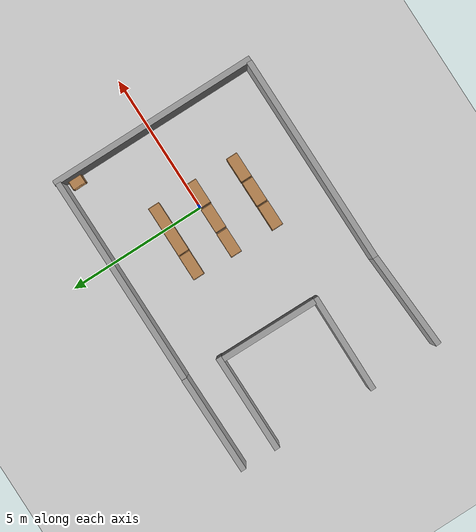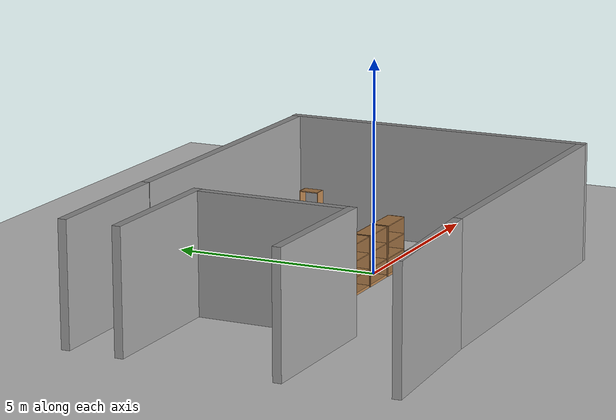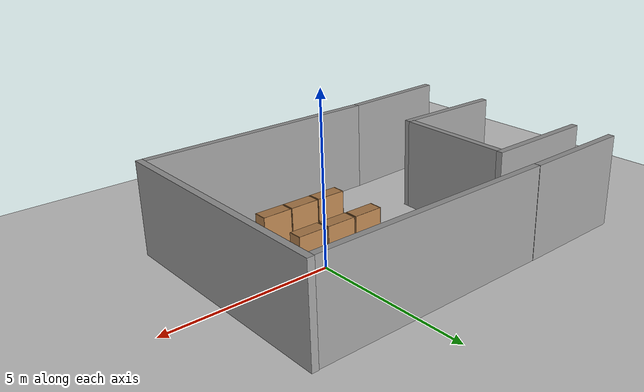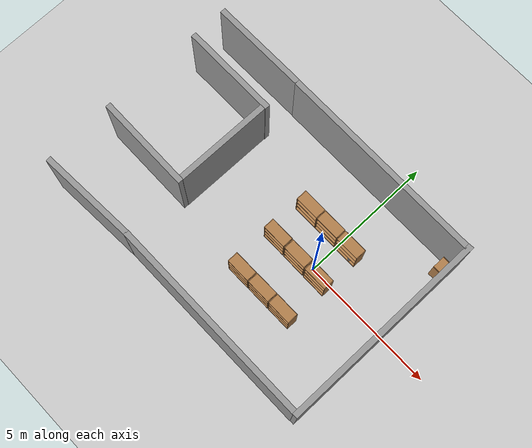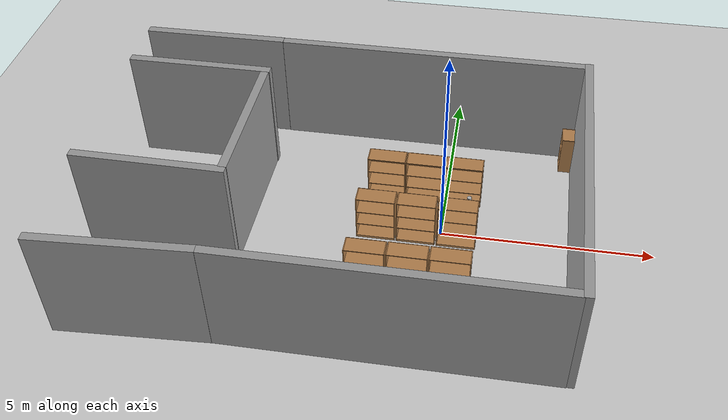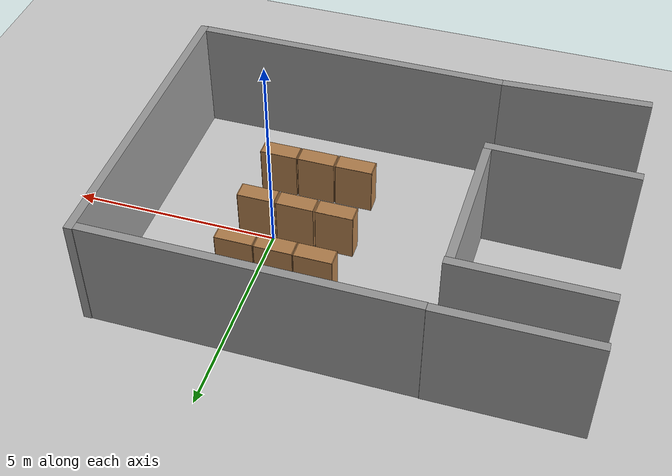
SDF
<sdf version="1.7">
 <world name="default">
  <light name="sun" type="directional">
   <pose>0 0 10 0 -0 0</pose>
   <diffuse>0.8 0.8 0.8 1</diffuse>
   <specular>0.2 0.2 0.2 1</specular>
   <attenuation>
    <range>1000</range>
    <constant>0.9</constant>
    <linear>0.01</linear>
    <quadratic>0.001</quadratic>
   </attenuation>
   <direction>-0.5 0.1 -0.9</direction>
   <spot><inner_angle>0</inner_angle><outer_angle>0</outer_angle><falloff>0</falloff></spot>
  </light>
  <model name="ground_plane">
   <static>1</static>
   <link name="link">
    <collision name="collision">
     <geometry><plane><normal>0 0 1</normal><size>100 100</size></plane></geometry>
     <surface><friction><ode><mu>100</mu><mu2>50</mu2></ode></friction></surface>
    </collision>
    <visual name="visual">
     <cast_shadows>0</cast_shadows>
     <geometry><plane><normal>0 0 1</normal><size>100 100</size></plane></geometry>
     <material>
      <script><uri>file://media/materials/scripts/gazebo.material</uri><name>Gazebo/Grey</name></script>
     </material>
    </visual>
   </link>
  </model>
  <gravity>0 0 -9.8</gravity>
  <magnetic_field>6e-06 2.3e-05 -4.2e-05</magnetic_field>
  <atmosphere type="adiabatic"/>
  <physics type="ode">
   <max_step_size>0.001</max_step_size>
   <real_time_factor>1</real_time_factor>
   <real_time_update_rate>1000</real_time_update_rate>
  </physics>
  <scene><ambient>0.4 0.4 0.4 1</ambient><background>0.7 0.7 0.7 1</background><shadows>1</shadows></scene>
  <audio><device>default</device></audio>
  <spherical_coordinates>
   <surface_model>EARTH_WGS84</surface_model>
   <latitude_deg>0</latitude_deg>
   <longitude_deg>0</longitude_deg>
   <elevation>0</elevation>
   <heading_deg>0</heading_deg>
  </spherical_coordinates>
  <model name="bookshelf">
   <static>1</static>
   <link name="link">
    <inertial><mass>1</mass></inertial>
    <collision name="back">
     <pose>0 0.005 0.6 0 -0 0</pose>
     <geometry><box><size>0.9 0.01 1.2</size></box></geometry>
    </collision>
    <visual name="visual1">
     <pose>0 0.005 0.6 0 -0 0</pose>
     <geometry><box><size>0.9 0.01 1.2</size></box></geometry>
     <material>
      <script><uri>file://media/materials/scripts/gazebo.material</uri><name>Gazebo/Wood</name></script>
     </material>
    </visual>
    <collision name="left_side">
     <pose>0.45 -0.195 0.6 0 -0 0</pose>
     <geometry><box><size>0.02 0.4 1.2</size></box></geometry>
    </collision>
    <visual name="visual2">
     <pose>0.45 -0.195 0.6 0 -0 0</pose>
     <geometry><box><size>0.02 0.4 1.2</size></box></geometry>
     <material>
      <script><uri>file://media/materials/scripts/gazebo.material</uri><name>Gazebo/Wood</name></script>
     </material>
    </visual>
    <collision name="right_side">
     <pose>-0.45 -0.195 0.6 0 -0 0</pose>
     <geometry><box><size>0.02 0.4 1.2</size></box></geometry>
    </collision>
    <visual name="visual3">
     <pose>-0.45 -0.195 0.6 0 -0 0</pose>
     <geometry><box><size>0.02 0.4 1.2</size></box></geometry>
     <material>
      <script><uri>file://media/materials/scripts/gazebo.material</uri><name>Gazebo/Wood</name></script>
     </material>
    </visual>
    <collision name="bottom">
     <pose>0 -0.195 0.03 0 -0 0</pose>
     <geometry><box><size>0.88 0.4 0.06</size></box></geometry>
    </collision>
    <visual name="visual4">
     <pose>0 -0.195 0.03 0 -0 0</pose>
     <geometry><box><size>0.88 0.4 0.06</size></box></geometry>
     <material>
      <script><uri>file://media/materials/scripts/gazebo.material</uri><name>Gazebo/Wood</name></script>
     </material>
    </visual>
    <collision name="top">
     <pose>0 -0.195 1.19 0 -0 0</pose>
     <geometry><box><size>0.88 0.4 0.02</size></box></geometry>
    </collision>
    <visual name="visual5">
     <pose>0 -0.195 1.19 0 -0 0</pose>
     <geometry><box><size>0.88 0.4 0.02</size></box></geometry>
     <material>
      <script><uri>file://media/materials/scripts/gazebo.material</uri><name>Gazebo/Wood</name></script>
     </material>
    </visual>
    <collision name="low_shelf">
     <pose>0 -0.195 0.43 0 -0 0</pose>
     <geometry><box><size>0.88 0.4 0.02</size></box></geometry>
    </collision>
    <visual name="visual6">
     <pose>0 -0.195 0.43 0 -0 0</pose>
     <geometry><box><size>0.88 0.4 0.02</size></box></geometry>
     <material>
      <script><uri>file://media/materials/scripts/gazebo.material</uri><name>Gazebo/Wood</name></script>
     </material>
    </visual>
    <collision name="high_shelf">
     <pose>0 -0.195 0.8 0 -0 0</pose>
     <geometry><box><size>0.88 0.4 0.02</size></box></geometry>
    </collision>
    <visual name="visual7">
     <pose>0 -0.195 0.8 0 -0 0</pose>
     <geometry><box><size>0.88 0.4 0.02</size></box></geometry>
     <material>
      <script><uri>file://media/materials/scripts/gazebo.material</uri><name>Gazebo/Wood</name></script>
     </material>
    </visual>
   </link>
   <pose>-1.46562 1.45935 0 0 -0 0</pose>
  </model>
  <model name="bookshelf_0">
   <static>1</static>
   <link name="link">
    <inertial><mass>1</mass></inertial>
    <collision name="back">
     <pose>0 0.005 0.6 0 -0 0</pose>
     <geometry><box><size>0.9 0.01 1.2</size></box></geometry>
    </collision>
    <visual name="visual1">
     <pose>0 0.005 0.6 0 -0 0</pose>
     <geometry><box><size>0.9 0.01 1.2</size></box></geometry>
     <material>
      <script><uri>file://media/materials/scripts/gazebo.material</uri><name>Gazebo/Wood</name></script>
     </material>
    </visual>
    <collision name="left_side">
     <pose>0.45 -0.195 0.6 0 -0 0</pose>
     <geometry><box><size>0.02 0.4 1.2</size></box></geometry>
    </collision>
    <visual name="visual2">
     <pose>0.45 -0.195 0.6 0 -0 0</pose>
     <geometry><box><size>0.02 0.4 1.2</size></box></geometry>
     <material>
      <script><uri>file://media/materials/scripts/gazebo.material</uri><name>Gazebo/Wood</name></script>
     </material>
    </visual>
    <collision name="right_side">
     <pose>-0.45 -0.195 0.6 0 -0 0</pose>
     <geometry><box><size>0.02 0.4 1.2</size></box></geometry>
    </collision>
    <visual name="visual3">
     <pose>-0.45 -0.195 0.6 0 -0 0</pose>
     <geometry><box><size>0.02 0.4 1.2</size></box></geometry>
     <material>
      <script><uri>file://media/materials/scripts/gazebo.material</uri><name>Gazebo/Wood</name></script>
     </material>
    </visual>
    <collision name="bottom">
     <pose>0 -0.195 0.03 0 -0 0</pose>
     <geometry><box><size>0.88 0.4 0.06</size></box></geometry>
    </collision>
    <visual name="visual4">
     <pose>0 -0.195 0.03 0 -0 0</pose>
     <geometry><box><size>0.88 0.4 0.06</size></box></geometry>
     <material>
      <script><uri>file://media/materials/scripts/gazebo.material</uri><name>Gazebo/Wood</name></script>
     </material>
    </visual>
    <collision name="top">
     <pose>0 -0.195 1.19 0 -0 0</pose>
     <geometry><box><size>0.88 0.4 0.02</size></box></geometry>
    </collision>
    <visual name="visual5">
     <pose>0 -0.195 1.19 0 -0 0</pose>
     <geometry><box><size>0.88 0.4 0.02</size></box></geometry>
     <material>
      <script><uri>file://media/materials/scripts/gazebo.material</uri><name>Gazebo/Wood</name></script>
     </material>
    </visual>
    <collision name="low_shelf">
     <pose>0 -0.195 0.43 0 -0 0</pose>
     <geometry><box><size>0.88 0.4 0.02</size></box></geometry>
    </collision>
    <visual name="visual6">
     <pose>0 -0.195 0.43 0 -0 0</pose>
     <geometry><box><size>0.88 0.4 0.02</size></box></geometry>
     <material>
      <script><uri>file://media/materials/scripts/gazebo.material</uri><name>Gazebo/Wood</name></script>
     </material>
    </visual>
    <collision name="high_shelf">
     <pose>0 -0.195 0.8 0 -0 0</pose>
     <geometry><box><size>0.88 0.4 0.02</size></box></geometry>
    </collision>
    <visual name="visual7">
     <pose>0 -0.195 0.8 0 -0 0</pose>
     <geometry><box><size>0.88 0.4 0.02</size></box></geometry>
     <material>
      <script><uri>file://media/materials/scripts/gazebo.material</uri><name>Gazebo/Wood</name></script>
     </material>
    </visual>
   </link>
   <pose>-0.53371 1.45436 0 0 -0 0</pose>
  </model>
  <model name="bookshelf_1">
   <static>1</static>
   <link name="link">
    <inertial><mass>1</mass></inertial>
    <collision name="back">
     <pose>0 0.005 0.6 0 -0 0</pose>
     <geometry><box><size>0.9 0.01 1.2</size></box></geometry>
    </collision>
    <visual name="visual1">
     <pose>0 0.005 0.6 0 -0 0</pose>
     <geometry><box><size>0.9 0.01 1.2</size></box></geometry>
     <material>
      <script><uri>file://media/materials/scripts/gazebo.material</uri><name>Gazebo/Wood</name></script>
     </material>
    </visual>
    <collision name="left_side">
     <pose>0.45 -0.195 0.6 0 -0 0</pose>
     <geometry><box><size>0.02 0.4 1.2</size></box></geometry>
    </collision>
    <visual name="visual2">
     <pose>0.45 -0.195 0.6 0 -0 0</pose>
     <geometry><box><size>0.02 0.4 1.2</size></box></geometry>
     <material>
      <script><uri>file://media/materials/scripts/gazebo.material</uri><name>Gazebo/Wood</name></script>
     </material>
    </visual>
    <collision name="right_side">
     <pose>-0.45 -0.195 0.6 0 -0 0</pose>
     <geometry><box><size>0.02 0.4 1.2</size></box></geometry>
    </collision>
    <visual name="visual3">
     <pose>-0.45 -0.195 0.6 0 -0 0</pose>
     <geometry><box><size>0.02 0.4 1.2</size></box></geometry>
     <material>
      <script><uri>file://media/materials/scripts/gazebo.material</uri><name>Gazebo/Wood</name></script>
     </material>
    </visual>
    <collision name="bottom">
     <pose>0 -0.195 0.03 0 -0 0</pose>
     <geometry><box><size>0.88 0.4 0.06</size></box></geometry>
    </collision>
    <visual name="visual4">
     <pose>0 -0.195 0.03 0 -0 0</pose>
     <geometry><box><size>0.88 0.4 0.06</size></box></geometry>
     <material>
      <script><uri>file://media/materials/scripts/gazebo.material</uri><name>Gazebo/Wood</name></script>
     </material>
    </visual>
    <collision name="top">
     <pose>0 -0.195 1.19 0 -0 0</pose>
     <geometry><box><size>0.88 0.4 0.02</size></box></geometry>
    </collision>
    <visual name="visual5">
     <pose>0 -0.195 1.19 0 -0 0</pose>
     <geometry><box><size>0.88 0.4 0.02</size></box></geometry>
     <material>
      <script><uri>file://media/materials/scripts/gazebo.material</uri><name>Gazebo/Wood</name></script>
     </material>
    </visual>
    <collision name="low_shelf">
     <pose>0 -0.195 0.43 0 -0 0</pose>
     <geometry><box><size>0.88 0.4 0.02</size></box></geometry>
    </collision>
    <visual name="visual6">
     <pose>0 -0.195 0.43 0 -0 0</pose>
     <geometry><box><size>0.88 0.4 0.02</size></box></geometry>
     <material>
      <script><uri>file://media/materials/scripts/gazebo.material</uri><name>Gazebo/Wood</name></script>
     </material>
    </visual>
    <collision name="high_shelf">
     <pose>0 -0.195 0.8 0 -0 0</pose>
     <geometry><box><size>0.88 0.4 0.02</size></box></geometry>
    </collision>
    <visual name="visual7">
     <pose>0 -0.195 0.8 0 -0 0</pose>
     <geometry><box><size>0.88 0.4 0.02</size></box></geometry>
     <material>
      <script><uri>file://media/materials/scripts/gazebo.material</uri><name>Gazebo/Wood</name></script>
     </material>
    </visual>
   </link>
   <pose>0.39976 1.44868 0 0 -0 0</pose>
  </model>
  <model name="beer">
   <link name="link">
    <pose>0 0 0.115 0 -0 0</pose>
    <inertial>
     <mass>0.39</mass>
     <inertia><ixx>0.00058</ixx><ixy>0</ixy><ixz>0</ixz><iyy>0.00058</iyy><iyz>0</iyz><izz>0.00019</izz></inertia>
    </inertial>
    <collision name="collision">
     <geometry><cylinder><radius>0.055</radius><length>0.23</length></cylinder></geometry>
    </collision>
    <visual name="visual">
     <geometry><cylinder><radius>0.055</radius><length>0.23</length></cylinder></geometry>
     <material>
      <script>
       <uri>model://beer/materials/scripts</uri>
       <uri>model://beer/materials/textures</uri>
       <name>Beer/Diffuse</name>
      </script>
     </material>
    </visual>
   </link>
   <pose>0.583658 1.12919 0 0 -0 0</pose>
  </model>
  <model name="bookshelf_2">
   <static>1</static>
   <link name="link">
    <inertial><mass>1</mass></inertial>
    <collision name="back">
     <pose>0 0.005 0.6 0 -0 0</pose>
     <geometry><box><size>0.9 0.01 1.2</size></box></geometry>
    </collision>
    <visual name="visual1">
     <pose>0 0.005 0.6 0 -0 0</pose>
     <geometry><box><size>0.9 0.01 1.2</size></box></geometry>
     <material>
      <script><uri>file://media/materials/scripts/gazebo.material</uri><name>Gazebo/Wood</name></script>
     </material>
    </visual>
    <collision name="left_side">
     <pose>0.45 -0.195 0.6 0 -0 0</pose>
     <geometry><box><size>0.02 0.4 1.2</size></box></geometry>
    </collision>
    <visual name="visual2">
     <pose>0.45 -0.195 0.6 0 -0 0</pose>
     <geometry><box><size>0.02 0.4 1.2</size></box></geometry>
     <material>
      <script><uri>file://media/materials/scripts/gazebo.material</uri><name>Gazebo/Wood</name></script>
     </material>
    </visual>
    <collision name="right_side">
     <pose>-0.45 -0.195 0.6 0 -0 0</pose>
     <geometry><box><size>0.02 0.4 1.2</size></box></geometry>
    </collision>
    <visual name="visual3">
     <pose>-0.45 -0.195 0.6 0 -0 0</pose>
     <geometry><box><size>0.02 0.4 1.2</size></box></geometry>
     <material>
      <script><uri>file://media/materials/scripts/gazebo.material</uri><name>Gazebo/Wood</name></script>
     </material>
    </visual>
    <collision name="bottom">
     <pose>0 -0.195 0.03 0 -0 0</pose>
     <geometry><box><size>0.88 0.4 0.06</size></box></geometry>
    </collision>
    <visual name="visual4">
     <pose>0 -0.195 0.03 0 -0 0</pose>
     <geometry><box><size>0.88 0.4 0.06</size></box></geometry>
     <material>
      <script><uri>file://media/materials/scripts/gazebo.material</uri><name>Gazebo/Wood</name></script>
     </material>
    </visual>
    <collision name="top">
     <pose>0 -0.195 1.19 0 -0 0</pose>
     <geometry><box><size>0.88 0.4 0.02</size></box></geometry>
    </collision>
    <visual name="visual5">
     <pose>0 -0.195 1.19 0 -0 0</pose>
     <geometry><box><size>0.88 0.4 0.02</size></box></geometry>
     <material>
      <script><uri>file://media/materials/scripts/gazebo.material</uri><name>Gazebo/Wood</name></script>
     </material>
    </visual>
    <collision name="low_shelf">
     <pose>0 -0.195 0.43 0 -0 0</pose>
     <geometry><box><size>0.88 0.4 0.02</size></box></geometry>
    </collision>
    <visual name="visual6">
     <pose>0 -0.195 0.43 0 -0 0</pose>
     <geometry><box><size>0.88 0.4 0.02</size></box></geometry>
     <material>
      <script><uri>file://media/materials/scripts/gazebo.material</uri><name>Gazebo/Wood</name></script>
     </material>
    </visual>
    <collision name="high_shelf">
     <pose>0 -0.195 0.8 0 -0 0</pose>
     <geometry><box><size>0.88 0.4 0.02</size></box></geometry>
    </collision>
    <visual name="visual7">
     <pose>0 -0.195 0.8 0 -0 0</pose>
     <geometry><box><size>0.88 0.4 0.02</size></box></geometry>
     <material>
      <script><uri>file://media/materials/scripts/gazebo.material</uri><name>Gazebo/Wood</name></script>
     </material>
    </visual>
   </link>
   <pose>-1.51005 0.018779 0 0 -0 0</pose>
  </model>
  <model name="bookshelf_3">
   <static>1</static>
   <link name="link">
    <inertial><mass>1</mass></inertial>
    <collision name="back">
     <pose>0 0.005 0.6 0 -0 0</pose>
     <geometry><box><size>0.9 0.01 1.2</size></box></geometry>
    </collision>
    <visual name="visual1">
     <pose>0 0.005 0.6 0 -0 0</pose>
     <geometry><box><size>0.9 0.01 1.2</size></box></geometry>
     <material>
      <script><uri>file://media/materials/scripts/gazebo.material</uri><name>Gazebo/Wood</name></script>
     </material>
    </visual>
    <collision name="left_side">
     <pose>0.45 -0.195 0.6 0 -0 0</pose>
     <geometry><box><size>0.02 0.4 1.2</size></box></geometry>
    </collision>
    <visual name="visual2">
     <pose>0.45 -0.195 0.6 0 -0 0</pose>
     <geometry><box><size>0.02 0.4 1.2</size></box></geometry>
     <material>
      <script><uri>file://media/materials/scripts/gazebo.material</uri><name>Gazebo/Wood</name></script>
     </material>
    </visual>
    <collision name="right_side">
     <pose>-0.45 -0.195 0.6 0 -0 0</pose>
     <geometry><box><size>0.02 0.4 1.2</size></box></geometry>
    </collision>
    <visual name="visual3">
     <pose>-0.45 -0.195 0.6 0 -0 0</pose>
     <geometry><box><size>0.02 0.4 1.2</size></box></geometry>
     <material>
      <script><uri>file://media/materials/scripts/gazebo.material</uri><name>Gazebo/Wood</name></script>
     </material>
    </visual>
    <collision name="bottom">
     <pose>0 -0.195 0.03 0 -0 0</pose>
     <geometry><box><size>0.88 0.4 0.06</size></box></geometry>
    </collision>
    <visual name="visual4">
     <pose>0 -0.195 0.03 0 -0 0</pose>
     <geometry><box><size>0.88 0.4 0.06</size></box></geometry>
     <material>
      <script><uri>file://media/materials/scripts/gazebo.material</uri><name>Gazebo/Wood</name></script>
     </material>
    </visual>
    <collision name="top">
     <pose>0 -0.195 1.19 0 -0 0</pose>
     <geometry><box><size>0.88 0.4 0.02</size></box></geometry>
    </collision>
    <visual name="visual5">
     <pose>0 -0.195 1.19 0 -0 0</pose>
     <geometry><box><size>0.88 0.4 0.02</size></box></geometry>
     <material>
      <script><uri>file://media/materials/scripts/gazebo.material</uri><name>Gazebo/Wood</name></script>
     </material>
    </visual>
    <collision name="low_shelf">
     <pose>0 -0.195 0.43 0 -0 0</pose>
     <geometry><box><size>0.88 0.4 0.02</size></box></geometry>
    </collision>
    <visual name="visual6">
     <pose>0 -0.195 0.43 0 -0 0</pose>
     <geometry><box><size>0.88 0.4 0.02</size></box></geometry>
     <material>
      <script><uri>file://media/materials/scripts/gazebo.material</uri><name>Gazebo/Wood</name></script>
     </material>
    </visual>
    <collision name="high_shelf">
     <pose>0 -0.195 0.8 0 -0 0</pose>
     <geometry><box><size>0.88 0.4 0.02</size></box></geometry>
    </collision>
    <visual name="visual7">
     <pose>0 -0.195 0.8 0 -0 0</pose>
     <geometry><box><size>0.88 0.4 0.02</size></box></geometry>
     <material>
      <script><uri>file://media/materials/scripts/gazebo.material</uri><name>Gazebo/Wood</name></script>
     </material>
    </visual>
   </link>
   <pose>-0.559161 0.013309 0 0 -0 0</pose>
  </model>
  <model name="bookshelf_4">
   <static>1</static>
   <link name="link">
    <inertial><mass>1</mass></inertial>
    <collision name="back">
     <pose>0 0.005 0.6 0 -0 0</pose>
     <geometry><box><size>0.9 0.01 1.2</size></box></geometry>
    </collision>
    <visual name="visual1">
     <pose>0 0.005 0.6 0 -0 0</pose>
     <geometry><box><size>0.9 0.01 1.2</size></box></geometry>
     <material>
      <script><uri>file://media/materials/scripts/gazebo.material</uri><name>Gazebo/Wood</name></script>
     </material>
    </visual>
    <collision name="left_side">
     <pose>0.45 -0.195 0.6 0 -0 0</pose>
     <geometry><box><size>0.02 0.4 1.2</size></box></geometry>
    </collision>
    <visual name="visual2">
     <pose>0.45 -0.195 0.6 0 -0 0</pose>
     <geometry><box><size>0.02 0.4 1.2</size></box></geometry>
     <material>
      <script><uri>file://media/materials/scripts/gazebo.material</uri><name>Gazebo/Wood</name></script>
     </material>
    </visual>
    <collision name="right_side">
     <pose>-0.45 -0.195 0.6 0 -0 0</pose>
     <geometry><box><size>0.02 0.4 1.2</size></box></geometry>
    </collision>
    <visual name="visual3">
     <pose>-0.45 -0.195 0.6 0 -0 0</pose>
     <geometry><box><size>0.02 0.4 1.2</size></box></geometry>
     <material>
      <script><uri>file://media/materials/scripts/gazebo.material</uri><name>Gazebo/Wood</name></script>
     </material>
    </visual>
    <collision name="bottom">
     <pose>0 -0.195 0.03 0 -0 0</pose>
     <geometry><box><size>0.88 0.4 0.06</size></box></geometry>
    </collision>
    <visual name="visual4">
     <pose>0 -0.195 0.03 0 -0 0</pose>
     <geometry><box><size>0.88 0.4 0.06</size></box></geometry>
     <material>
      <script><uri>file://media/materials/scripts/gazebo.material</uri><name>Gazebo/Wood</name></script>
     </material>
    </visual>
    <collision name="top">
     <pose>0 -0.195 1.19 0 -0 0</pose>
     <geometry><box><size>0.88 0.4 0.02</size></box></geometry>
    </collision>
    <visual name="visual5">
     <pose>0 -0.195 1.19 0 -0 0</pose>
     <geometry><box><size>0.88 0.4 0.02</size></box></geometry>
     <material>
      <script><uri>file://media/materials/scripts/gazebo.material</uri><name>Gazebo/Wood</name></script>
     </material>
    </visual>
    <collision name="low_shelf">
     <pose>0 -0.195 0.43 0 -0 0</pose>
     <geometry><box><size>0.88 0.4 0.02</size></box></geometry>
    </collision>
    <visual name="visual6">
     <pose>0 -0.195 0.43 0 -0 0</pose>
     <geometry><box><size>0.88 0.4 0.02</size></box></geometry>
     <material>
      <script><uri>file://media/materials/scripts/gazebo.material</uri><name>Gazebo/Wood</name></script>
     </material>
    </visual>
    <collision name="high_shelf">
     <pose>0 -0.195 0.8 0 -0 0</pose>
     <geometry><box><size>0.88 0.4 0.02</size></box></geometry>
    </collision>
    <visual name="visual7">
     <pose>0 -0.195 0.8 0 -0 0</pose>
     <geometry><box><size>0.88 0.4 0.02</size></box></geometry>
     <material>
      <script><uri>file://media/materials/scripts/gazebo.material</uri><name>Gazebo/Wood</name></script>
     </material>
    </visual>
   </link>
   <pose>0.39396 0.003178 0 0 -0 0</pose>
  </model>
  <model name="cabinet">
   <static>1</static>
   <link name="cabinet_bottom_plate">
    <inertial>
     <pose>0 0 -1 0 -0 0</pose>
     <inertia><ixx>2.05</ixx><ixy>0</ixy><ixz>0</ixz><iyy>2.05</iyy><iyz>0</iyz><izz>2.05</izz></inertia>
     <mass>25</mass>
    </inertial>
    <collision name="cabinet_bottom_plate_geom">
     <pose>0 0 0.01 0 -0 0</pose>
     <geometry><box><size>0.45 0.45 0.02</size></box></geometry>
    </collision>
    <visual name="cabinet_bottom_plate_geom_visual">
     <pose>0 0 0.01 0 -0 0</pose>
     <geometry><box><size>0.45 0.45 0.02</size></box></geometry>
     <material>
      <script><uri>file://media/materials/scripts/gazebo.material</uri><name>Gazebo/Wood</name></script>
     </material>
    </visual>
    <collision name="cabinet_bottom_plate_geom_cabinet_back_plate">
     <pose>0.235 0 0.51 0 -0 0</pose>
     <geometry><box><size>0.02 0.45 1.02</size></box></geometry>
    </collision>
    <visual name="cabinet_bottom_plate_geom_cabinet_back_plate_visual">
     <pose>0.235 0 0.51 0 -0 0</pose>
     <geometry><box><size>0.02 0.45 1.02</size></box></geometry>
     <material>
      <script><uri>file://media/materials/scripts/gazebo.material</uri><name>Gazebo/Wood</name></script>
     </material>
    </visual>
    <collision name="cabinet_bottom_plate_geom_cabinet_left_plate">
     <pose>0 0.235 0.51 0 -0 0</pose>
     <geometry><box><size>0.45 0.02 1.02</size></box></geometry>
    </collision>
    <visual name="cabinet_bottom_plate_geom_cabinet_left_plate_visual">
     <pose>0 0.235 0.51 0 -0 0</pose>
     <geometry><box><size>0.45 0.02 1.02</size></box></geometry>
     <material>
      <script><uri>file://media/materials/scripts/gazebo.material</uri><name>Gazebo/Wood</name></script>
     </material>
    </visual>
    <collision name="cabinet_bottom_plate_geom_cabinet_middle_plate">
     <pose>0 0 0.51 0 -0 0</pose>
     <geometry><box><size>0.45 0.45 0.02</size></box></geometry>
    </collision>
    <visual name="cabinet_bottom_plate_geom_cabinet_middle_plate_visual">
     <pose>0 0 0.51 0 -0 0</pose>
     <geometry><box><size>0.45 0.45 0.02</size></box></geometry>
     <material>
      <script><uri>file://media/materials/scripts/gazebo.material</uri><name>Gazebo/Wood</name></script>
     </material>
    </visual>
    <collision name="cabinet_bottom_plate_geom_cabinet_right_plate">
     <pose>0 -0.235 0.51 0 -0 0</pose>
     <geometry><box><size>0.45 0.02 1.02</size></box></geometry>
    </collision>
    <visual name="cabinet_bottom_plate_geom_cabinet_right_plate_visual">
     <pose>0 -0.235 0.51 0 -0 0</pose>
     <geometry><box><size>0.45 0.02 1.02</size></box></geometry>
     <material>
      <script><uri>file://media/materials/scripts/gazebo.material</uri><name>Gazebo/Wood</name></script>
     </material>
    </visual>
    <collision name="cabinet_bottom_plate_geom_cabinet_top_plate">
     <pose>0 0 1.01 0 -0 0</pose>
     <geometry><box><size>0.45 0.45 0.02</size></box></geometry>
    </collision>
    <visual name="cabinet_bottom_plate_geom_cabinet_top_plate_visual">
     <pose>0 0 1.01 0 -0 0</pose>
     <geometry><box><size>0.45 0.45 0.02</size></box></geometry>
     <material>
      <script><uri>file://media/materials/scripts/gazebo.material</uri><name>Gazebo/Wood</name></script>
     </material>
    </visual>
   </link>
   <pose>2.94621 2.95224 -0 0 -0 0</pose>
  </model>
  <model name="bookshelf_5">
   <model name="bookshelf">
    <static>1</static>
    <link name="link">
     <inertial><mass>1</mass></inertial>
     <collision name="back">
      <pose>0 0.005 0.6 0 -0 0</pose>
      <geometry><box><size>0.9 0.01 1.2</size></box></geometry>
     </collision>
     <visual name="visual1">
      <pose>0 0.005 0.6 0 -0 0</pose>
      <geometry><box><size>0.9 0.01 1.2</size></box></geometry>
      <material>
       <script><uri>file://media/materials/scripts/gazebo.material</uri><name>Gazebo/Wood</name></script>
      </material>
     </visual>
     <collision name="left_side">
      <pose>0.45 -0.195 0.6 0 -0 0</pose>
      <geometry><box><size>0.02 0.4 1.2</size></box></geometry>
     </collision>
     <visual name="visual2">
      <pose>0.45 -0.195 0.6 0 -0 0</pose>
      <geometry><box><size>0.02 0.4 1.2</size></box></geometry>
      <material>
       <script><uri>file://media/materials/scripts/gazebo.material</uri><name>Gazebo/Wood</name></script>
      </material>
     </visual>
     <collision name="right_side">
      <pose>-0.45 -0.195 0.6 0 -0 0</pose>
      <geometry><box><size>0.02 0.4 1.2</size></box></geometry>
     </collision>
     <visual name="visual3">
      <pose>-0.45 -0.195 0.6 0 -0 0</pose>
      <geometry><box><size>0.02 0.4 1.2</size></box></geometry>
      <material>
       <script><uri>file://media/materials/scripts/gazebo.material</uri><name>Gazebo/Wood</name></script>
      </material>
     </visual>
     <collision name="bottom">
      <pose>0 -0.195 0.03 0 -0 0</pose>
      <geometry><box><size>0.88 0.4 0.06</size></box></geometry>
     </collision>
     <visual name="visual4">
      <pose>0 -0.195 0.03 0 -0 0</pose>
      <geometry><box><size>0.88 0.4 0.06</size></box></geometry>
      <material>
       <script><uri>file://media/materials/scripts/gazebo.material</uri><name>Gazebo/Wood</name></script>
      </material>
     </visual>
     <collision name="top">
      <pose>0 -0.195 1.19 0 -0 0</pose>
      <geometry><box><size>0.88 0.4 0.02</size></box></geometry>
     </collision>
     <visual name="visual5">
      <pose>0 -0.195 1.19 0 -0 0</pose>
      <geometry><box><size>0.88 0.4 0.02</size></box></geometry>
      <material>
       <script><uri>file://media/materials/scripts/gazebo.material</uri><name>Gazebo/Wood</name></script>
      </material>
     </visual>
     <collision name="low_shelf">
      <pose>0 -0.195 0.43 0 -0 0</pose>
      <geometry><box><size>0.88 0.4 0.02</size></box></geometry>
     </collision>
     <visual name="visual6">
      <pose>0 -0.195 0.43 0 -0 0</pose>
      <geometry><box><size>0.88 0.4 0.02</size></box></geometry>
      <material>
       <script><uri>file://media/materials/scripts/gazebo.material</uri><name>Gazebo/Wood</name></script>
      </material>
     </visual>
     <collision name="high_shelf">
      <pose>0 -0.195 0.8 0 -0 0</pose>
      <geometry><box><size>0.88 0.4 0.02</size></box></geometry>
     </collision>
     <visual name="visual7">
      <pose>0 -0.195 0.8 0 -0 0</pose>
      <geometry><box><size>0.88 0.4 0.02</size></box></geometry>
      <material>
       <script><uri>file://media/materials/scripts/gazebo.material</uri><name>Gazebo/Wood</name></script>
      </material>
     </visual>
    </link>
    <pose>0.036511 -0.595835 0 0 -0 0</pose>
   </model>
   <static>1</static>
   <pose>-1.5343 -1.0042 0 0 -0 0</pose>
  </model>
  <model name="bookshelf_6">
   <static>1</static>
   <link name="link">
    <inertial><mass>1</mass></inertial>
    <collision name="back">
     <pose>0 0.005 0.6 0 -0 0</pose>
     <geometry><box><size>0.9 0.01 1.2</size></box></geometry>
    </collision>
    <visual name="visual1">
     <pose>0 0.005 0.6 0 -0 0</pose>
     <geometry><box><size>0.9 0.01 1.2</size></box></geometry>
     <material>
      <script><uri>file://media/materials/scripts/gazebo.material</uri><name>Gazebo/Wood</name></script>
     </material>
    </visual>
    <collision name="left_side">
     <pose>0.45 -0.195 0.6 0 -0 0</pose>
     <geometry><box><size>0.02 0.4 1.2</size></box></geometry>
    </collision>
    <visual name="visual2">
     <pose>0.45 -0.195 0.6 0 -0 0</pose>
     <geometry><box><size>0.02 0.4 1.2</size></box></geometry>
     <material>
      <script><uri>file://media/materials/scripts/gazebo.material</uri><name>Gazebo/Wood</name></script>
     </material>
    </visual>
    <collision name="right_side">
     <pose>-0.45 -0.195 0.6 0 -0 0</pose>
     <geometry><box><size>0.02 0.4 1.2</size></box></geometry>
    </collision>
    <visual name="visual3">
     <pose>-0.45 -0.195 0.6 0 -0 0</pose>
     <geometry><box><size>0.02 0.4 1.2</size></box></geometry>
     <material>
      <script><uri>file://media/materials/scripts/gazebo.material</uri><name>Gazebo/Wood</name></script>
     </material>
    </visual>
    <collision name="bottom">
     <pose>0 -0.195 0.03 0 -0 0</pose>
     <geometry><box><size>0.88 0.4 0.06</size></box></geometry>
    </collision>
    <visual name="visual4">
     <pose>0 -0.195 0.03 0 -0 0</pose>
     <geometry><box><size>0.88 0.4 0.06</size></box></geometry>
     <material>
      <script><uri>file://media/materials/scripts/gazebo.material</uri><name>Gazebo/Wood</name></script>
     </material>
    </visual>
    <collision name="top">
     <pose>0 -0.195 1.19 0 -0 0</pose>
     <geometry><box><size>0.88 0.4 0.02</size></box></geometry>
    </collision>
    <visual name="visual5">
     <pose>0 -0.195 1.19 0 -0 0</pose>
     <geometry><box><size>0.88 0.4 0.02</size></box></geometry>
     <material>
      <script><uri>file://media/materials/scripts/gazebo.material</uri><name>Gazebo/Wood</name></script>
     </material>
    </visual>
    <collision name="low_shelf">
     <pose>0 -0.195 0.43 0 -0 0</pose>
     <geometry><box><size>0.88 0.4 0.02</size></box></geometry>
    </collision>
    <visual name="visual6">
     <pose>0 -0.195 0.43 0 -0 0</pose>
     <geometry><box><size>0.88 0.4 0.02</size></box></geometry>
     <material>
      <script><uri>file://media/materials/scripts/gazebo.material</uri><name>Gazebo/Wood</name></script>
     </material>
    </visual>
    <collision name="high_shelf">
     <pose>0 -0.195 0.8 0 -0 0</pose>
     <geometry><box><size>0.88 0.4 0.02</size></box></geometry>
    </collision>
    <visual name="visual7">
     <pose>0 -0.195 0.8 0 -0 0</pose>
     <geometry><box><size>0.88 0.4 0.02</size></box></geometry>
     <material>
      <script><uri>file://media/materials/scripts/gazebo.material</uri><name>Gazebo/Wood</name></script>
     </material>
    </visual>
   </link>
   <pose>-0.555699 -1.59465 0 0 -0 0</pose>
  </model>
  <model name="bookshelf_7">
   <static>1</static>
   <link name="link">
    <inertial><mass>1</mass></inertial>
    <collision name="back">
     <pose>0 0.005 0.6 0 -0 0</pose>
     <geometry><box><size>0.9 0.01 1.2</size></box></geometry>
    </collision>
    <visual name="visual1">
     <pose>0 0.005 0.6 0 -0 0</pose>
     <geometry><box><size>0.9 0.01 1.2</size></box></geometry>
     <material>
      <script><uri>file://media/materials/scripts/gazebo.material</uri><name>Gazebo/Wood</name></script>
     </material>
    </visual>
    <collision name="left_side">
     <pose>0.45 -0.195 0.6 0 -0 0</pose>
     <geometry><box><size>0.02 0.4 1.2</size></box></geometry>
    </collision>
    <visual name="visual2">
     <pose>0.45 -0.195 0.6 0 -0 0</pose>
     <geometry><box><size>0.02 0.4 1.2</size></box></geometry>
     <material>
      <script><uri>file://media/materials/scripts/gazebo.material</uri><name>Gazebo/Wood</name></script>
     </material>
    </visual>
    <collision name="right_side">
     <pose>-0.45 -0.195 0.6 0 -0 0</pose>
     <geometry><box><size>0.02 0.4 1.2</size></box></geometry>
    </collision>
    <visual name="visual3">
     <pose>-0.45 -0.195 0.6 0 -0 0</pose>
     <geometry><box><size>0.02 0.4 1.2</size></box></geometry>
     <material>
      <script><uri>file://media/materials/scripts/gazebo.material</uri><name>Gazebo/Wood</name></script>
     </material>
    </visual>
    <collision name="bottom">
     <pose>0 -0.195 0.03 0 -0 0</pose>
     <geometry><box><size>0.88 0.4 0.06</size></box></geometry>
    </collision>
    <visual name="visual4">
     <pose>0 -0.195 0.03 0 -0 0</pose>
     <geometry><box><size>0.88 0.4 0.06</size></box></geometry>
     <material>
      <script><uri>file://media/materials/scripts/gazebo.material</uri><name>Gazebo/Wood</name></script>
     </material>
    </visual>
    <collision name="top">
     <pose>0 -0.195 1.19 0 -0 0</pose>
     <geometry><box><size>0.88 0.4 0.02</size></box></geometry>
    </collision>
    <visual name="visual5">
     <pose>0 -0.195 1.19 0 -0 0</pose>
     <geometry><box><size>0.88 0.4 0.02</size></box></geometry>
     <material>
      <script><uri>file://media/materials/scripts/gazebo.material</uri><name>Gazebo/Wood</name></script>
     </material>
    </visual>
    <collision name="low_shelf">
     <pose>0 -0.195 0.43 0 -0 0</pose>
     <geometry><box><size>0.88 0.4 0.02</size></box></geometry>
    </collision>
    <visual name="visual6">
     <pose>0 -0.195 0.43 0 -0 0</pose>
     <geometry><box><size>0.88 0.4 0.02</size></box></geometry>
     <material>
      <script><uri>file://media/materials/scripts/gazebo.material</uri><name>Gazebo/Wood</name></script>
     </material>
    </visual>
    <collision name="high_shelf">
     <pose>0 -0.195 0.8 0 -0 0</pose>
     <geometry><box><size>0.88 0.4 0.02</size></box></geometry>
    </collision>
    <visual name="visual7">
     <pose>0 -0.195 0.8 0 -0 0</pose>
     <geometry><box><size>0.88 0.4 0.02</size></box></geometry>
     <material>
      <script><uri>file://media/materials/scripts/gazebo.material</uri><name>Gazebo/Wood</name></script>
     </material>
    </visual>
   </link>
   <pose>0.385078 -1.59312 0 0 -0 0</pose>
  </model>
  <model name="grey_wall_0">
   <static>1</static>
   <link name="link">
    <pose>0 0 1.4 0 -0 0</pose>
    <collision name="collision"><geometry><box><size>7.5 0.2 2.8</size></box></geometry></collision>
    <visual name="visual">
     <cast_shadows>0</cast_shadows>
     <geometry><box><size>7.5 0.2 2.8</size></box></geometry>
     <material>
      <script>
       <uri>model://grey_wall/materials/scripts</uri>
       <uri>model://grey_wall/materials/textures</uri>
       <name>vrc/grey_wall</name>
      </script>
     </material>
    </visual>
   </link>
   <pose>-0.726197 -3.87965 0 0 -0 0</pose>
  </model>
  <model name="grey_wall">
   <static>1</static>
   <link name="link">
    <pose>0 0 1.4 0 -0 0</pose>
    <collision name="collision"><geometry><box><size>7.5 0.2 2.8</size></box></geometry></collision>
    <visual name="visual">
     <cast_shadows>0</cast_shadows>
     <geometry><box><size>7.5 0.2 2.8</size></box></geometry>
     <material>
      <script>
       <uri>model://grey_wall/materials/scripts</uri>
       <uri>model://grey_wall/materials/textures</uri>
       <name>vrc/grey_wall</name>
      </script>
     </material>
    </visual>
   </link>
   <pose>-0.684541 3.41504 0 0 -0 0</pose>
  </model>
  <model name="grey_wall_1">
   <static>1</static>
   <link name="link">
    <pose>0 0 1.4 0 -0 0</pose>
    <collision name="collision"><geometry><box><size>7.5 0.2 2.8</size></box></geometry></collision>
    <visual name="visual">
     <cast_shadows>0</cast_shadows>
     <geometry><box><size>7.5 0.2 2.8</size></box></geometry>
     <material>
      <script>
       <uri>model://grey_wall/materials/scripts</uri>
       <uri>model://grey_wall/materials/textures</uri>
       <name>vrc/grey_wall</name>
      </script>
     </material>
    </visual>
   </link>
   <pose>3.10648 -0.218077 0 -2e-05 -0 -1.57551</pose>
  </model>
  <model name="grey_wall_2">
   <link name="link">
    <pose>-1.79506 -0.196384 1.4 0 -0 0</pose>
    <inertial>
     <mass>1</mass>
     <inertia><ixx>1</ixx><ixy>0</ixy><ixz>0</ixz><iyy>1</iyy><iyz>0</iyz><izz>1</izz></inertia>
    </inertial>
    <visual name="visual">
     <cast_shadows>0</cast_shadows>
     <geometry><box><size>3.5 0.2 2.8</size></box></geometry>
     <material>
      <script>
       <uri>model://grey_wall/materials/scripts</uri>
       <uri>model://grey_wall/materials/textures</uri>
       <name>vrc/grey_wall</name>
      </script>
      <shader type="pixel"><normal_map>__default__</normal_map></shader>
      <ambient>1 1 1 1</ambient>
      <diffuse>1 1 1 1</diffuse>
      <specular>0 0 0 1</specular>
      <emissive>0 0 0 1</emissive>
     </material>
    </visual>
    <collision name="collision">
     <geometry><box><size>7.5 0.2 2.8</size></box></geometry>
     <surface>
      <friction>
       <ode><mu>1</mu><mu2>1</mu2><fdir1>0 0 0</fdir1><slip1>0</slip1><slip2>0</slip2></ode>
       <torsional>
        <coefficient>1</coefficient>
        <patch_radius>0</patch_radius>
        <surface_radius>0</surface_radius>
        <use_patch_radius>1</use_patch_radius>
        <ode><slip>0</slip></ode>
       </torsional>
      </friction>
      <bounce><restitution_coefficient>0</restitution_coefficient><threshold>1e+06</threshold></bounce>
      <contact>
       <collide_without_contact>0</collide_without_contact>
       <collide_without_contact_bitmask>1</collide_without_contact_bitmask>
       <collide_bitmask>1</collide_bitmask>
       <ode>
        <soft_cfm>0</soft_cfm>
        <soft_erp>0.2</soft_erp>
        <kp>1e+13</kp>
        <kd>1</kd>
        <max_vel>0.01</max_vel>
        <min_depth>0</min_depth>
       </ode>
       <bullet>
        <split_impulse>1</split_impulse>
        <split_impulse_penetration_threshold>-0.01</split_impulse_penetration_threshold>
        <soft_cfm>0</soft_cfm>
        <soft_erp>0.2</soft_erp>
        <kp>1e+13</kp>
        <kd>1</kd>
       </bullet>
      </contact>
     </surface>
    </collision>
   </link>
   <link name="link_clone">
    <pose>-3.62522 -1.82976 1.4 0 -0 1.58206</pose>
    <inertial>
     <mass>1</mass>
     <inertia><ixx>1</ixx><ixy>0</ixy><ixz>0</ixz><iyy>1</iyy><iyz>0</iyz><izz>1</izz></inertia>
    </inertial>
    <visual name="visual">
     <cast_shadows>0</cast_shadows>
     <geometry><box><size>3.5 0.2 2.8</size></box></geometry>
     <material>
      <script>
       <uri>model://grey_wall/materials/scripts</uri>
       <uri>model://grey_wall/materials/textures</uri>
       <name>vrc/grey_wall</name>
      </script>
      <shader type="pixel"><normal_map>__default__</normal_map></shader>
      <ambient>1 1 1 1</ambient>
      <diffuse>1 1 1 1</diffuse>
      <specular>0 0 0 1</specular>
      <emissive>0 0 0 1</emissive>
     </material>
    </visual>
    <collision name="collision">
     <geometry><box><size>7.5 0.2 2.8</size></box></geometry>
     <surface>
      <friction>
       <ode><mu>1</mu><mu2>1</mu2><fdir1>0 0 0</fdir1><slip1>0</slip1><slip2>0</slip2></ode>
       <torsional>
        <coefficient>1</coefficient>
        <patch_radius>0</patch_radius>
        <surface_radius>0</surface_radius>
        <use_patch_radius>1</use_patch_radius>
        <ode><slip>0</slip></ode>
       </torsional>
      </friction>
      <bounce><restitution_coefficient>0</restitution_coefficient><threshold>1e+06</threshold></bounce>
      <contact>
       <collide_without_contact>0</collide_without_contact>
       <collide_without_contact_bitmask>1</collide_without_contact_bitmask>
       <collide_bitmask>1</collide_bitmask>
       <ode>
        <soft_cfm>0</soft_cfm>
        <soft_erp>0.2</soft_erp>
        <kp>1e+13</kp>
        <kd>1</kd>
        <max_vel>0.01</max_vel>
        <min_depth>0</min_depth>
       </ode>
       <bullet>
        <split_impulse>1</split_impulse>
        <split_impulse_penetration_threshold>-0.01</split_impulse_penetration_threshold>
        <soft_cfm>0</soft_cfm>
        <soft_erp>0.2</soft_erp>
        <kp>1e+13</kp>
        <kd>1</kd>
       </bullet>
      </contact>
     </surface>
    </collision>
   </link>
   <link name="link_clone_clone">
    <pose>0.028932 -1.85478 1.4 0 -0 1.57232</pose>
    <inertial>
     <mass>1</mass>
     <inertia><ixx>1</ixx><ixy>0</ixy><ixz>0</ixz><iyy>1</iyy><iyz>0</iyz><izz>1</izz></inertia>
    </inertial>
    <visual name="visual">
     <cast_shadows>0</cast_shadows>
     <geometry><box><size>3.5 0.2 2.8</size></box></geometry>
     <material>
      <script>
       <uri>model://grey_wall/materials/scripts</uri>
       <uri>model://grey_wall/materials/textures</uri>
       <name>vrc/grey_wall</name>
      </script>
      <shader type="pixel"><normal_map>__default__</normal_map></shader>
      <ambient>1 1 1 1</ambient>
      <diffuse>1 1 1 1</diffuse>
      <specular>0 0 0 1</specular>
      <emissive>0 0 0 1</emissive>
     </material>
    </visual>
    <collision name="collision">
     <geometry><box><size>7.5 0.2 2.8</size></box></geometry>
     <surface>
      <friction>
       <ode><mu>1</mu><mu2>1</mu2><fdir1>0 0 0</fdir1><slip1>0</slip1><slip2>0</slip2></ode>
       <torsional>
        <coefficient>1</coefficient>
        <patch_radius>0</patch_radius>
        <surface_radius>0</surface_radius>
        <use_patch_radius>1</use_patch_radius>
        <ode><slip>0</slip></ode>
       </torsional>
      </friction>
      <bounce><restitution_coefficient>0</restitution_coefficient><threshold>1e+06</threshold></bounce>
      <contact>
       <collide_without_contact>0</collide_without_contact>
       <collide_without_contact_bitmask>1</collide_without_contact_bitmask>
       <collide_bitmask>1</collide_bitmask>
       <ode>
        <soft_cfm>0</soft_cfm>
        <soft_erp>0.2</soft_erp>
        <kp>1e+13</kp>
        <kd>1</kd>
        <max_vel>0.01</max_vel>
        <min_depth>0</min_depth>
       </ode>
       <bullet>
        <split_impulse>1</split_impulse>
        <split_impulse_penetration_threshold>-0.01</split_impulse_penetration_threshold>
        <soft_cfm>0</soft_cfm>
        <soft_erp>0.2</soft_erp>
        <kp>1e+13</kp>
        <kd>1</kd>
       </bullet>
      </contact>
     </surface>
    </collision>
   </link>
   <link name="link_clone_clone_0">
    <pose>2.47099 -1.75067 1.4 0 -0 1.63608</pose>
    <inertial>
     <mass>1</mass>
     <inertia><ixx>1</ixx><ixy>0</ixy><ixz>0</ixz><iyy>1</iyy><iyz>0</iyz><izz>1</izz></inertia>
    </inertial>
    <visual name="visual">
     <cast_shadows>0</cast_shadows>
     <geometry><box><size>3.5 0.2 2.8</size></box></geometry>
     <material>
      <script>
       <uri>model://grey_wall/materials/scripts</uri>
       <uri>model://grey_wall/materials/textures</uri>
       <name>vrc/grey_wall</name>
      </script>
      <shader type="pixel"><normal_map>__default__</normal_map></shader>
      <ambient>1 1 1 1</ambient>
      <diffuse>1 1 1 1</diffuse>
      <specular>0 0 0 1</specular>
      <emissive>0 0 0 1</emissive>
     </material>
    </visual>
    <collision name="collision">
     <geometry><box><size>7.5 0.2 2.8</size></box></geometry>
     <surface>
      <friction>
       <ode><mu>1</mu><mu2>1</mu2><fdir1>0 0 0</fdir1><slip1>0</slip1><slip2>0</slip2></ode>
       <torsional>
        <coefficient>1</coefficient>
        <patch_radius>0</patch_radius>
        <surface_radius>0</surface_radius>
        <use_patch_radius>1</use_patch_radius>
        <ode><slip>0</slip></ode>
       </torsional>
      </friction>
      <bounce><restitution_coefficient>0</restitution_coefficient><threshold>1e+06</threshold></bounce>
      <contact>
       <collide_without_contact>0</collide_without_contact>
       <collide_without_contact_bitmask>1</collide_without_contact_bitmask>
       <collide_bitmask>1</collide_bitmask>
       <ode>
        <soft_cfm>0</soft_cfm>
        <soft_erp>0.2</soft_erp>
        <kp>1e+13</kp>
        <kd>1</kd>
        <max_vel>0.01</max_vel>
        <min_depth>0</min_depth>
       </ode>
       <bullet>
        <split_impulse>1</split_impulse>
        <split_impulse_penetration_threshold>-0.01</split_impulse_penetration_threshold>
        <soft_cfm>0</soft_cfm>
        <soft_erp>0.2</soft_erp>
        <kp>1e+13</kp>
        <kd>1</kd>
       </bullet>
      </contact>
     </surface>
    </collision>
   </link>
   <link name="link_clone_clone_1">
    <pose>-4.91547 -1.82753 1.4 0 -0 1.58952</pose>
    <inertial>
     <mass>1</mass>
     <inertia><ixx>1</ixx><ixy>0</ixy><ixz>0</ixz><iyy>1</iyy><iyz>0</iyz><izz>1</izz></inertia>
    </inertial>
    <visual name="visual">
     <cast_shadows>0</cast_shadows>
     <geometry><box><size>3.5 0.2 2.8</size></box></geometry>
     <material>
      <script>
       <uri>model://grey_wall/materials/scripts</uri>
       <uri>model://grey_wall/materials/textures</uri>
       <name>vrc/grey_wall</name>
      </script>
      <shader type="pixel"><normal_map>__default__</normal_map></shader>
      <ambient>1 1 1 1</ambient>
      <diffuse>1 1 1 1</diffuse>
      <specular>0 0 0 1</specular>
      <emissive>0 0 0 1</emissive>
     </material>
    </visual>
    <collision name="collision">
     <geometry><box><size>7.5 0.2 2.8</size></box></geometry>
     <surface>
      <friction>
       <ode><mu>1</mu><mu2>1</mu2><fdir1>0 0 0</fdir1><slip1>0</slip1><slip2>0</slip2></ode>
       <torsional>
        <coefficient>1</coefficient>
        <patch_radius>0</patch_radius>
        <surface_radius>0</surface_radius>
        <use_patch_radius>1</use_patch_radius>
        <ode><slip>0</slip></ode>
       </torsional>
      </friction>
      <bounce><restitution_coefficient>0</restitution_coefficient><threshold>1e+06</threshold></bounce>
      <contact>
       <collide_without_contact>0</collide_without_contact>
       <collide_without_contact_bitmask>1</collide_without_contact_bitmask>
       <collide_bitmask>1</collide_bitmask>
       <ode>
        <soft_cfm>0</soft_cfm>
        <soft_erp>0.2</soft_erp>
        <kp>1e+13</kp>
        <kd>1</kd>
        <max_vel>0.01</max_vel>
        <min_depth>0</min_depth>
       </ode>
       <bullet>
        <split_impulse>1</split_impulse>
        <split_impulse_penetration_threshold>-0.01</split_impulse_penetration_threshold>
        <soft_cfm>0</soft_cfm>
        <soft_erp>0.2</soft_erp>
        <kp>1e+13</kp>
        <kd>1</kd>
       </bullet>
      </contact>
     </surface>
    </collision>
   </link>
   <static>1</static>
   <pose>-4.41688 -1.52533 0 0 0 -1.58206</pose>
  </model>
 </world>
</sdf>
